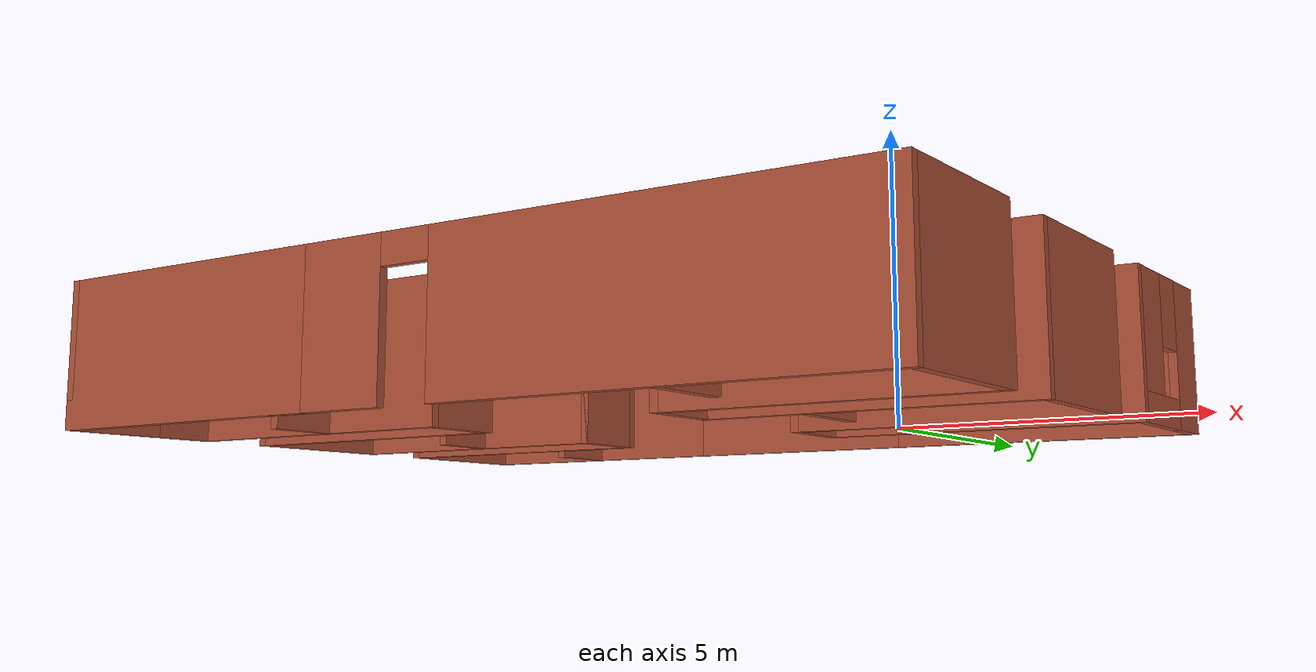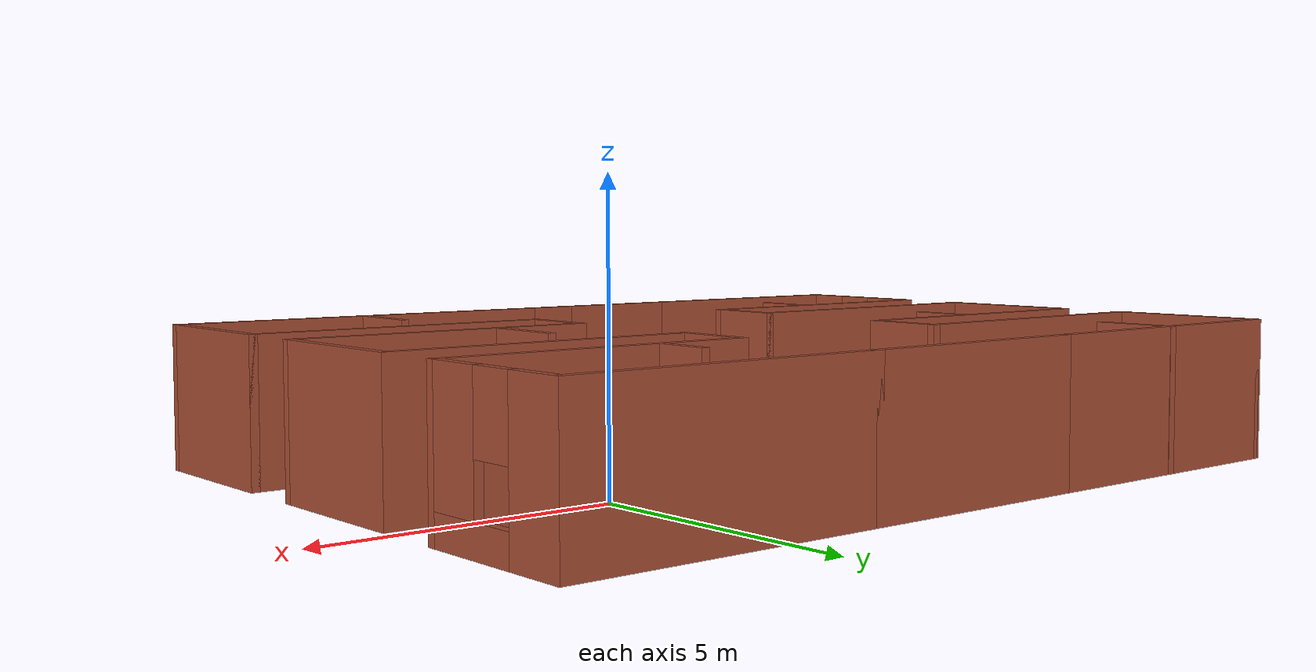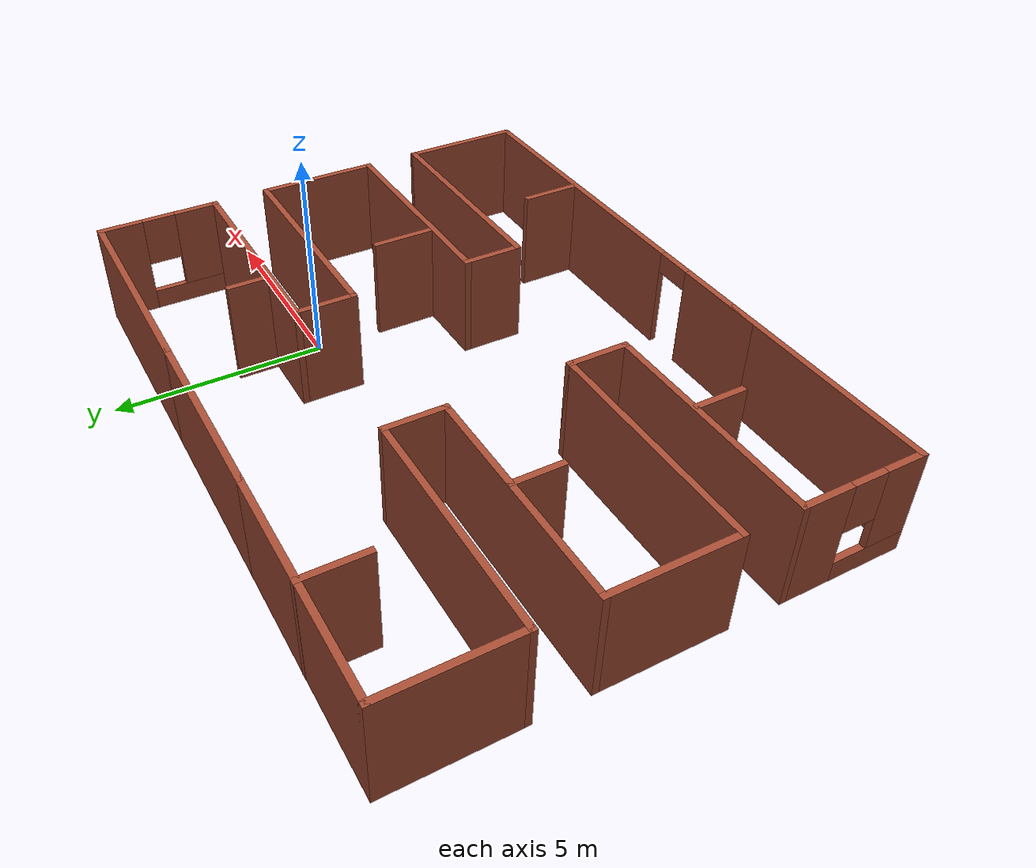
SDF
<?xml version='1.0'?>
<sdf version='1.7'>
  <model name='map'>
    <pose>-3.90417 -1.71275 0 0 -0 0</pose>
    <link name='Wall_0'>
      <collision name='Wall_0_Collision'>
        <geometry>
          <box>
            <size>3 0.15 2.5</size>
          </box>
        </geometry>
        <pose>0 0 1.25 0 -0 0</pose>
      </collision>
      <visual name='Wall_0_Visual'>
        <pose>0 0 1.25 0 -0 0</pose>
        <geometry>
          <box>
            <size>3 0.15 2.5</size>
          </box>
        </geometry>
        <material>
          <script>
            <uri>file://media/materials/scripts/gazebo.material</uri>
            <name>Gazebo/Bricks</name>
          </script>
          <ambient>1 1 1 1</ambient>
        </material>
        <meta>
          <layer>0</layer>
        </meta>
      </visual>
      <pose>-7.525 -0.003164 0 0 -0 -1.5708</pose>
    </link>
    <link name='Wall_1'>
      <collision name='Wall_1_Collision'>
        <geometry>
          <box>
            <size>5.5 0.15 2.5</size>
          </box>
        </geometry>
        <pose>0 0 1.25 0 -0 0</pose>
      </collision>
      <visual name='Wall_1_Visual'>
        <pose>0 0 1.25 0 -0 0</pose>
        <geometry>
          <box>
            <size>5.5 0.15 2.5</size>
          </box>
        </geometry>
        <material>
          <script>
            <uri>file://media/materials/scripts/gazebo.material</uri>
            <name>Gazebo/Bricks</name>
          </script>
          <ambient>1 1 1 1</ambient>
        </material>
        <meta>
          <layer>0</layer>
        </meta>
      </visual>
      <pose>-4.85 -1.42816 0 0 -0 0</pose>
    </link>
    <link name='Wall_10'>
      <collision name='Wall_10_Collision'>
        <geometry>
          <box>
            <size>5.5 0.15 2.5</size>
          </box>
        </geometry>
        <pose>0 0 1.25 0 -0 0</pose>
      </collision>
      <visual name='Wall_10_Visual'>
        <pose>0 0 1.25 0 -0 0</pose>
        <geometry>
          <box>
            <size>5.5 0.15 2.5</size>
          </box>
        </geometry>
        <material>
          <script>
            <uri>file://media/materials/scripts/gazebo.material</uri>
            <name>Gazebo/Bricks</name>
          </script>
          <ambient>1 1 1 1</ambient>
        </material>
        <meta>
          <layer>0</layer>
        </meta>
      </visual>
      <pose>-4.85 1.42184 0 0 -0 0</pose>
    </link>
    <link name='Wall_11'>
      <collision name='Wall_11_Collision'>
        <geometry>
          <box>
            <size>1.5 0.15 2.5</size>
          </box>
        </geometry>
        <pose>0 0 1.25 0 -0 0</pose>
      </collision>
      <visual name='Wall_11_Visual'>
        <pose>0 0 1.25 0 -0 0</pose>
        <geometry>
          <box>
            <size>1.5 0.15 2.5</size>
          </box>
        </geometry>
        <material>
          <script>
            <uri>file://media/materials/scripts/gazebo.material</uri>
            <name>Gazebo/Bricks</name>
          </script>
          <ambient>1 1 1 1</ambient>
        </material>
        <meta>
          <layer>0</layer>
        </meta>
      </visual>
      <pose>-2.175 2.09684 0 0 -0 1.5708</pose>
    </link>
    <link name='Wall_12'>
      <collision name='Wall_12_Collision'>
        <geometry>
          <box>
            <size>5.5 0.15 2.5</size>
          </box>
        </geometry>
        <pose>0 0 1.25 0 -0 0</pose>
      </collision>
      <visual name='Wall_12_Visual'>
        <pose>0 0 1.25 0 -0 0</pose>
        <geometry>
          <box>
            <size>5.5 0.15 2.5</size>
          </box>
        </geometry>
        <material>
          <script>
            <uri>file://media/materials/scripts/gazebo.material</uri>
            <name>Gazebo/Bricks</name>
          </script>
          <ambient>1 1 1 1</ambient>
        </material>
        <meta>
          <layer>0</layer>
        </meta>
      </visual>
      <pose>-4.85 2.77184 0 0 -0 3.14159</pose>
    </link>
    <link name='Wall_13'>
      <collision name='Wall_13_Collision'>
        <geometry>
          <box>
            <size>3 0.15 2.5</size>
          </box>
        </geometry>
        <pose>0 0 1.25 0 -0 0</pose>
      </collision>
      <visual name='Wall_13_Visual'>
        <pose>0 0 1.25 0 -0 0</pose>
        <geometry>
          <box>
            <size>3 0.15 2.5</size>
          </box>
        </geometry>
        <material>
          <script>
            <uri>file://media/materials/scripts/gazebo.material</uri>
            <name>Gazebo/Bricks</name>
          </script>
          <ambient>1 1 1 1</ambient>
        </material>
        <meta>
          <layer>0</layer>
        </meta>
      </visual>
      <pose>-7.525 4.19684 0 0 -0 1.5708</pose>
    </link>
    <link name='Wall_14'>
      <collision name='Wall_14_Collision'>
        <geometry>
          <box>
            <size>5.5 0.15 2.5</size>
          </box>
        </geometry>
        <pose>0 0 1.25 0 -0 0</pose>
      </collision>
      <visual name='Wall_14_Visual'>
        <pose>0 0 1.25 0 -0 0</pose>
        <geometry>
          <box>
            <size>5.5 0.15 2.5</size>
          </box>
        </geometry>
        <material>
          <script>
            <uri>file://media/materials/scripts/gazebo.material</uri>
            <name>Gazebo/Bricks</name>
          </script>
          <ambient>1 1 1 1</ambient>
        </material>
        <meta>
          <layer>0</layer>
        </meta>
      </visual>
      <pose>-4.85 5.62184 0 0 -0 0</pose>
    </link>
    <link name='Wall_16'>
      <collision name='Wall_16_Collision'>
        <geometry>
          <box>
            <size>4.5 0.15 2.5</size>
          </box>
        </geometry>
        <pose>0 0 1.25 0 -0 0</pose>
      </collision>
      <visual name='Wall_16_Visual'>
        <pose>0 0 1.25 0 -0 0</pose>
        <geometry>
          <box>
            <size>4.5 0.15 2.5</size>
          </box>
        </geometry>
        <material>
          <script>
            <uri>file://media/materials/scripts/gazebo.material</uri>
            <name>Gazebo/Bricks</name>
          </script>
          <ambient>1 1 1 1</ambient>
        </material>
        <meta>
          <layer>0</layer>
        </meta>
      </visual>
      <pose>-0 5.62184 0 0 -0 0</pose>
    </link>
    <link name='Wall_17'>
      <collision name='Wall_17_Collision'>
        <geometry>
          <box>
            <size>5.5 0.15 2.5</size>
          </box>
        </geometry>
        <pose>0 0 1.25 0 -0 0</pose>
      </collision>
      <visual name='Wall_17_Visual'>
        <pose>0 0 1.25 0 -0 0</pose>
        <geometry>
          <box>
            <size>5.5 0.15 2.5</size>
          </box>
        </geometry>
        <material>
          <script>
            <uri>file://media/materials/scripts/gazebo.material</uri>
            <name>Gazebo/Bricks</name>
          </script>
          <ambient>1 1 1 1</ambient>
        </material>
        <meta>
          <layer>0</layer>
        </meta>
      </visual>
      <pose>4.85 5.62184 0 0 -0 0</pose>
    </link>
    <link name='Wall_18'>
      <pose>7.525 4.19684 0 0 -0 -1.5708</pose>
      <visual name='Wall_18_Visual_0'>
        <pose>-0.962088 0 1.25 0 -0 0</pose>
        <geometry>
          <box>
            <size>1.07582 0.15 2.5</size>
          </box>
        </geometry>
        <material>
          <script>
            <uri>file://media/materials/scripts/gazebo.material</uri>
            <name>Gazebo/Bricks</name>
          </script>
          <ambient>1 1 1 1</ambient>
        </material>
        <meta>
          <layer>0</layer>
        </meta>
      </visual>
      <collision name='Wall_18_Collision_0'>
        <geometry>
          <box>
            <size>1.07582 0.15 2.5</size>
          </box>
        </geometry>
        <pose>-0.962088 0 1.25 0 -0 0</pose>
      </collision>
      <visual name='Wall_18_Visual_1'>
        <pose>0.537912 0 0.25 0 -0 0</pose>
        <geometry>
          <box>
            <size>1.92418 0.15 0.5</size>
          </box>
        </geometry>
        <material>
          <script>
            <uri>file://media/materials/scripts/gazebo.material</uri>
            <name>Gazebo/Bricks</name>
          </script>
          <ambient>1 1 1 1</ambient>
        </material>
        <meta>
          <layer>0</layer>
        </meta>
      </visual>
      <collision name='Wall_18_Collision_1'>
        <geometry>
          <box>
            <size>1.92418 0.15 0.5</size>
          </box>
        </geometry>
        <pose>0.537912 0 0.25 0 -0 0</pose>
      </collision>
      <visual name='Wall_18_Visual_2'>
        <pose>0.937912 0 1.5 0 -0 0</pose>
        <geometry>
          <box>
            <size>1.12418 0.15 2</size>
          </box>
        </geometry>
        <material>
          <script>
            <uri>file://media/materials/scripts/gazebo.material</uri>
            <name>Gazebo/Bricks</name>
          </script>
          <ambient>1 1 1 1</ambient>
        </material>
        <meta>
          <layer>0</layer>
        </meta>
      </visual>
      <collision name='Wall_18_Collision_2'>
        <geometry>
          <box>
            <size>1.12418 0.15 2</size>
          </box>
        </geometry>
        <pose>0.937912 0 1.5 0 -0 0</pose>
      </collision>
      <visual name='Wall_18_Visual_3'>
        <pose>-0.024177 0 1.9 0 -0 0</pose>
        <geometry>
          <box>
            <size>0.8 0.15 1.2</size>
          </box>
        </geometry>
        <material>
          <script>
            <uri>file://media/materials/scripts/gazebo.material</uri>
            <name>Gazebo/Bricks</name>
          </script>
          <ambient>1 1 1 1</ambient>
        </material>
        <meta>
          <layer>0</layer>
        </meta>
      </visual>
      <collision name='Wall_18_Collision_3'>
        <geometry>
          <box>
            <size>0.8 0.15 1.2</size>
          </box>
        </geometry>
        <pose>-0.024177 0 1.9 0 -0 0</pose>
      </collision>
    </link>
    <link name='Wall_19'>
      <collision name='Wall_19_Collision'>
        <geometry>
          <box>
            <size>5.5 0.15 2.5</size>
          </box>
        </geometry>
        <pose>0 0 1.25 0 -0 0</pose>
      </collision>
      <visual name='Wall_19_Visual'>
        <pose>0 0 1.25 0 -0 0</pose>
        <geometry>
          <box>
            <size>5.5 0.15 2.5</size>
          </box>
        </geometry>
        <material>
          <script>
            <uri>file://media/materials/scripts/gazebo.material</uri>
            <name>Gazebo/Bricks</name>
          </script>
          <ambient>1 1 1 1</ambient>
        </material>
        <meta>
          <layer>0</layer>
        </meta>
      </visual>
      <pose>4.85 2.77184 0 0 -0 3.14159</pose>
    </link>
    <link name='Wall_2'>
      <collision name='Wall_2_Collision'>
        <geometry>
          <box>
            <size>1.5 0.15 2.5</size>
          </box>
        </geometry>
        <pose>0 0 1.25 0 -0 0</pose>
      </collision>
      <visual name='Wall_2_Visual'>
        <pose>0 0 1.25 0 -0 0</pose>
        <geometry>
          <box>
            <size>1.5 0.15 2.5</size>
          </box>
        </geometry>
        <material>
          <script>
            <uri>file://media/materials/scripts/gazebo.material</uri>
            <name>Gazebo/Bricks</name>
          </script>
          <ambient>1 1 1 1</ambient>
        </material>
        <meta>
          <layer>0</layer>
        </meta>
      </visual>
      <pose>-2.175 -2.10316 0 0 -0 -1.5708</pose>
    </link>
    <link name='Wall_20'>
      <collision name='Wall_20_Collision'>
        <geometry>
          <box>
            <size>1.5 0.15 2.5</size>
          </box>
        </geometry>
        <pose>0 0 1.25 0 -0 0</pose>
      </collision>
      <visual name='Wall_20_Visual'>
        <pose>0 0 1.25 0 -0 0</pose>
        <geometry>
          <box>
            <size>1.5 0.15 2.5</size>
          </box>
        </geometry>
        <material>
          <script>
            <uri>file://media/materials/scripts/gazebo.material</uri>
            <name>Gazebo/Bricks</name>
          </script>
          <ambient>1 1 1 1</ambient>
        </material>
        <meta>
          <layer>0</layer>
        </meta>
      </visual>
      <pose>2.175 2.09684 0 0 -0 -1.5708</pose>
    </link>
    <link name='Wall_21'>
      <collision name='Wall_21_Collision'>
        <geometry>
          <box>
            <size>5.5 0.15 2.5</size>
          </box>
        </geometry>
        <pose>0 0 1.25 0 -0 0</pose>
      </collision>
      <visual name='Wall_21_Visual'>
        <pose>0 0 1.25 0 -0 0</pose>
        <geometry>
          <box>
            <size>5.5 0.15 2.5</size>
          </box>
        </geometry>
        <material>
          <script>
            <uri>file://media/materials/scripts/gazebo.material</uri>
            <name>Gazebo/Bricks</name>
          </script>
          <ambient>1 1 1 1</ambient>
        </material>
        <meta>
          <layer>0</layer>
        </meta>
      </visual>
      <pose>4.85 1.42184 0 0 -0 0</pose>
    </link>
    <link name='Wall_22'>
      <collision name='Wall_22_Collision'>
        <geometry>
          <box>
            <size>3 0.15 2.5</size>
          </box>
        </geometry>
        <pose>0 0 1.25 0 -0 0</pose>
      </collision>
      <visual name='Wall_22_Visual'>
        <pose>0 0 1.25 0 -0 0</pose>
        <geometry>
          <box>
            <size>3 0.15 2.5</size>
          </box>
        </geometry>
        <material>
          <script>
            <uri>file://media/materials/scripts/gazebo.material</uri>
            <name>Gazebo/Bricks</name>
          </script>
          <ambient>1 1 1 1</ambient>
        </material>
        <meta>
          <layer>0</layer>
        </meta>
      </visual>
      <pose>7.525 -0.003164 0 0 -0 -1.5708</pose>
    </link>
    <link name='Wall_23'>
      <collision name='Wall_23_Collision'>
        <geometry>
          <box>
            <size>5.5 0.15 2.5</size>
          </box>
        </geometry>
        <pose>0 0 1.25 0 -0 0</pose>
      </collision>
      <visual name='Wall_23_Visual'>
        <pose>0 0 1.25 0 -0 0</pose>
        <geometry>
          <box>
            <size>5.5 0.15 2.5</size>
          </box>
        </geometry>
        <material>
          <script>
            <uri>file://media/materials/scripts/gazebo.material</uri>
            <name>Gazebo/Bricks</name>
          </script>
          <ambient>1 1 1 1</ambient>
        </material>
        <meta>
          <layer>0</layer>
        </meta>
      </visual>
      <pose>4.85 -1.42816 0 0 -0 3.14159</pose>
    </link>
    <link name='Wall_24'>
      <collision name='Wall_24_Collision'>
        <geometry>
          <box>
            <size>1.5 0.15 2.5</size>
          </box>
        </geometry>
        <pose>0 0 1.25 0 -0 0</pose>
      </collision>
      <visual name='Wall_24_Visual'>
        <pose>0 0 1.25 0 -0 0</pose>
        <geometry>
          <box>
            <size>1.5 0.15 2.5</size>
          </box>
        </geometry>
        <material>
          <script>
            <uri>file://media/materials/scripts/gazebo.material</uri>
            <name>Gazebo/Bricks</name>
          </script>
          <ambient>1 1 1 1</ambient>
        </material>
        <meta>
          <layer>0</layer>
        </meta>
      </visual>
      <pose>2.175 -2.10316 0 0 -0 -1.5708</pose>
    </link>
    <link name='Wall_25'>
      <collision name='Wall_25_Collision'>
        <geometry>
          <box>
            <size>5.5 0.15 2.5</size>
          </box>
        </geometry>
        <pose>0 0 1.25 0 -0 0</pose>
      </collision>
      <visual name='Wall_25_Visual'>
        <pose>0 0 1.25 0 -0 0</pose>
        <geometry>
          <box>
            <size>5.5 0.15 2.5</size>
          </box>
        </geometry>
        <material>
          <script>
            <uri>file://media/materials/scripts/gazebo.material</uri>
            <name>Gazebo/Bricks</name>
          </script>
          <ambient>1 1 1 1</ambient>
        </material>
        <meta>
          <layer>0</layer>
        </meta>
      </visual>
      <pose>4.85 -2.77816 0 0 -0 0</pose>
    </link>
    <link name='Wall_26'>
      <collision name='Wall_26_Collision'>
        <geometry>
          <box>
            <size>3 0.15 2.5</size>
          </box>
        </geometry>
        <pose>0 0 1.25 0 -0 0</pose>
      </collision>
      <visual name='Wall_26_Visual'>
        <pose>0 0 1.25 0 -0 0</pose>
        <geometry>
          <box>
            <size>3 0.15 2.5</size>
          </box>
        </geometry>
        <material>
          <script>
            <uri>file://media/materials/scripts/gazebo.material</uri>
            <name>Gazebo/Bricks</name>
          </script>
          <ambient>1 1 1 1</ambient>
        </material>
        <meta>
          <layer>0</layer>
        </meta>
      </visual>
      <pose>7.525 -4.20316 0 0 -0 -1.5708</pose>
    </link>
    <link name='Wall_27'>
      <pose>2.35 -5.62816 0 0 -0 3.14159</pose>
      <visual name='Wall_27_Visual_0'>
        <pose>-1.6106 0 1.25 0 -0 0</pose>
        <geometry>
          <box>
            <size>7.27881 0.15 2.5</size>
          </box>
        </geometry>
        <material>
          <script>
            <uri>file://media/materials/scripts/gazebo.material</uri>
            <name>Gazebo/Bricks</name>
          </script>
          <ambient>1 1 1 1</ambient>
        </material>
        <meta>
          <layer>0</layer>
        </meta>
      </visual>
      <collision name='Wall_27_Collision_0'>
        <geometry>
          <box>
            <size>7.27881 0.15 2.5</size>
          </box>
        </geometry>
        <pose>-1.6106 0 1.25 0 -0 0</pose>
      </collision>
      <visual name='Wall_27_Visual_1'>
        <pose>4.0894 0 1.25 0 -0 0</pose>
        <geometry>
          <box>
            <size>2.32119 0.15 2.5</size>
          </box>
        </geometry>
        <material>
          <script>
            <uri>file://media/materials/scripts/gazebo.material</uri>
            <name>Gazebo/Bricks</name>
          </script>
          <ambient>1 1 1 1</ambient>
        </material>
        <meta>
          <layer>0</layer>
        </meta>
      </visual>
      <collision name='Wall_27_Collision_1'>
        <geometry>
          <box>
            <size>2.32119 0.15 2.5</size>
          </box>
        </geometry>
        <pose>4.0894 0 1.25 0 -0 0</pose>
      </collision>
      <visual name='Wall_27_Visual_2'>
        <pose>2.4788 0 2.25 0 -0 0</pose>
        <geometry>
          <box>
            <size>0.9 0.15 0.5</size>
          </box>
        </geometry>
        <material>
          <script>
            <uri>file://media/materials/scripts/gazebo.material</uri>
            <name>Gazebo/Bricks</name>
          </script>
          <ambient>1 1 1 1</ambient>
        </material>
        <meta>
          <layer>0</layer>
        </meta>
      </visual>
      <collision name='Wall_27_Collision_2'>
        <geometry>
          <box>
            <size>0.9 0.15 0.5</size>
          </box>
        </geometry>
        <pose>2.4788 0 2.25 0 -0 0</pose>
      </collision>
    </link>
    <link name='Wall_29'>
      <collision name='Wall_29_Collision'>
        <geometry>
          <box>
            <size>1.25 0.15 2.5</size>
          </box>
        </geometry>
        <pose>0 0 1.25 0 -0 0</pose>
      </collision>
      <visual name='Wall_29_Visual'>
        <pose>0 0 1.25 0 -0 0</pose>
        <geometry>
          <box>
            <size>1.25 0.15 2.5</size>
          </box>
        </geometry>
        <material>
          <script>
            <uri>file://media/materials/scripts/gazebo.material</uri>
            <name>Gazebo/Bricks</name>
          </script>
          <ambient>1 1 1 1</ambient>
        </material>
        <meta>
          <layer>0</layer>
        </meta>
      </visual>
      <pose>-4.59498 0.856712 0 0 -0 -1.5708</pose>
    </link>
    <link name='Wall_3'>
      <collision name='Wall_3_Collision'>
        <geometry>
          <box>
            <size>5.5 0.15 2.5</size>
          </box>
        </geometry>
        <pose>0 0 1.25 0 -0 0</pose>
      </collision>
      <visual name='Wall_3_Visual'>
        <pose>0 0 1.25 0 -0 0</pose>
        <geometry>
          <box>
            <size>5.5 0.15 2.5</size>
          </box>
        </geometry>
        <material>
          <script>
            <uri>file://media/materials/scripts/gazebo.material</uri>
            <name>Gazebo/Bricks</name>
          </script>
          <ambient>1 1 1 1</ambient>
        </material>
        <meta>
          <layer>0</layer>
        </meta>
      </visual>
      <pose>-4.85 -2.77816 0 0 -0 3.14159</pose>
    </link>
    <link name='Wall_31'>
      <collision name='Wall_31_Collision'>
        <geometry>
          <box>
            <size>1.25 0.15 2.5</size>
          </box>
        </geometry>
        <pose>0 0 1.25 0 -0 0</pose>
      </collision>
      <visual name='Wall_31_Visual'>
        <pose>0 0 1.25 0 -0 0</pose>
        <geometry>
          <box>
            <size>1.25 0.15 2.5</size>
          </box>
        </geometry>
        <material>
          <script>
            <uri>file://media/materials/scripts/gazebo.material</uri>
            <name>Gazebo/Bricks</name>
          </script>
          <ambient>1 1 1 1</ambient>
        </material>
        <meta>
          <layer>0</layer>
        </meta>
      </visual>
      <pose>-4.47262 -3.39533 0 0 -0 -1.5708</pose>
    </link>
    <link name='Wall_33'>
      <collision name='Wall_33_Collision'>
        <geometry>
          <box>
            <size>1.5 0.15 2.5</size>
          </box>
        </geometry>
        <pose>0 0 1.25 0 -0 0</pose>
      </collision>
      <visual name='Wall_33_Visual'>
        <pose>0 0 1.25 0 -0 0</pose>
        <geometry>
          <box>
            <size>1.5 0.15 2.5</size>
          </box>
        </geometry>
        <material>
          <script>
            <uri>file://media/materials/scripts/gazebo.material</uri>
            <name>Gazebo/Bricks</name>
          </script>
          <ambient>1 1 1 1</ambient>
        </material>
        <meta>
          <layer>0</layer>
        </meta>
      </visual>
      <pose>-4.87029 4.95316 0 0 -0 -1.5708</pose>
    </link>
    <link name='Wall_35'>
      <collision name='Wall_35_Collision'>
        <geometry>
          <box>
            <size>1 0.15 2.5</size>
          </box>
        </geometry>
        <pose>0 0 1.25 0 -0 0</pose>
      </collision>
      <visual name='Wall_35_Visual'>
        <pose>0 0 1.25 0 -0 0</pose>
        <geometry>
          <box>
            <size>1 0.15 2.5</size>
          </box>
        </geometry>
        <material>
          <script>
            <uri>file://media/materials/scripts/gazebo.material</uri>
            <name>Gazebo/Bricks</name>
          </script>
          <ambient>1 1 1 1</ambient>
        </material>
        <meta>
          <layer>0</layer>
        </meta>
      </visual>
      <pose>3.75615 3.30004 0 0 -0 1.5708</pose>
    </link>
    <link name='Wall_37'>
      <collision name='Wall_37_Collision'>
        <geometry>
          <box>
            <size>1.5 0.15 2.5</size>
          </box>
        </geometry>
        <pose>0 0 1.25 0 -0 0</pose>
      </collision>
      <visual name='Wall_37_Visual'>
        <pose>0 0 1.25 0 -0 0</pose>
        <geometry>
          <box>
            <size>1.5 0.15 2.5</size>
          </box>
        </geometry>
        <material>
          <script>
            <uri>file://media/materials/scripts/gazebo.material</uri>
            <name>Gazebo/Bricks</name>
          </script>
          <ambient>1 1 1 1</ambient>
        </material>
        <meta>
          <layer>0</layer>
        </meta>
      </visual>
      <pose>3.84792 -0.610228 0 0 -0 1.5708</pose>
    </link>
    <link name='Wall_39'>
      <collision name='Wall_39_Collision'>
        <geometry>
          <box>
            <size>1.5 0.15 2.5</size>
          </box>
        </geometry>
        <pose>0 0 1.25 0 -0 0</pose>
      </collision>
      <visual name='Wall_39_Visual'>
        <pose>0 0 1.25 0 -0 0</pose>
        <geometry>
          <box>
            <size>1.5 0.15 2.5</size>
          </box>
        </geometry>
        <material>
          <script>
            <uri>file://media/materials/scripts/gazebo.material</uri>
            <name>Gazebo/Bricks</name>
          </script>
          <ambient>1 1 1 1</ambient>
        </material>
        <meta>
          <layer>0</layer>
        </meta>
      </visual>
      <pose>4.03147 -4.89286 0 0 -0 1.5708</pose>
    </link>
    <link name='Wall_4'>
      <pose>-7.525 -4.20316 0 0 -0 -1.5708</pose>
      <visual name='Wall_4_Visual_0'>
        <pose>-0.894752 0 1.25 0 -0 0</pose>
        <geometry>
          <box>
            <size>1.2105 0.15 2.5</size>
          </box>
        </geometry>
        <material>
          <script>
            <uri>file://media/materials/scripts/gazebo.material</uri>
            <name>Gazebo/Bricks</name>
          </script>
          <ambient>1 1 1 1</ambient>
        </material>
        <meta>
          <layer>0</layer>
        </meta>
      </visual>
      <collision name='Wall_4_Collision_0'>
        <geometry>
          <box>
            <size>1.2105 0.15 2.5</size>
          </box>
        </geometry>
        <pose>-0.894752 0 1.25 0 -0 0</pose>
      </collision>
      <visual name='Wall_4_Visual_1'>
        <pose>0.605248 0 0.25 0 -0 0</pose>
        <geometry>
          <box>
            <size>1.7895 0.15 0.5</size>
          </box>
        </geometry>
        <material>
          <script>
            <uri>file://media/materials/scripts/gazebo.material</uri>
            <name>Gazebo/Bricks</name>
          </script>
          <ambient>1 1 1 1</ambient>
        </material>
        <meta>
          <layer>0</layer>
        </meta>
      </visual>
      <collision name='Wall_4_Collision_1'>
        <geometry>
          <box>
            <size>1.7895 0.15 0.5</size>
          </box>
        </geometry>
        <pose>0.605248 0 0.25 0 -0 0</pose>
      </collision>
      <visual name='Wall_4_Visual_2'>
        <pose>1.00525 0 1.5 0 -0 0</pose>
        <geometry>
          <box>
            <size>0.989503 0.15 2</size>
          </box>
        </geometry>
        <material>
          <script>
            <uri>file://media/materials/scripts/gazebo.material</uri>
            <name>Gazebo/Bricks</name>
          </script>
          <ambient>1 1 1 1</ambient>
        </material>
        <meta>
          <layer>0</layer>
        </meta>
      </visual>
      <collision name='Wall_4_Collision_2'>
        <geometry>
          <box>
            <size>0.989503 0.15 2</size>
          </box>
        </geometry>
        <pose>1.00525 0 1.5 0 -0 0</pose>
      </collision>
      <visual name='Wall_4_Visual_3'>
        <pose>0.110497 0 1.9 0 -0 0</pose>
        <geometry>
          <box>
            <size>0.8 0.15 1.2</size>
          </box>
        </geometry>
        <material>
          <script>
            <uri>file://media/materials/scripts/gazebo.material</uri>
            <name>Gazebo/Bricks</name>
          </script>
          <ambient>1 1 1 1</ambient>
        </material>
        <meta>
          <layer>0</layer>
        </meta>
      </visual>
      <collision name='Wall_4_Collision_3'>
        <geometry>
          <box>
            <size>0.8 0.15 1.2</size>
          </box>
        </geometry>
        <pose>0.110497 0 1.9 0 -0 0</pose>
      </collision>
    </link>
    <link name='Wall_6'>
      <collision name='Wall_6_Collision'>
        <geometry>
          <box>
            <size>5.5 0.15 2.5</size>
          </box>
        </geometry>
        <pose>0 0 1.25 0 -0 0</pose>
      </collision>
      <visual name='Wall_6_Visual'>
        <pose>0 0 1.25 0 -0 0</pose>
        <geometry>
          <box>
            <size>5.5 0.15 2.5</size>
          </box>
        </geometry>
        <material>
          <script>
            <uri>file://media/materials/scripts/gazebo.material</uri>
            <name>Gazebo/Bricks</name>
          </script>
          <ambient>1 1 1 1</ambient>
        </material>
        <meta>
          <layer>0</layer>
        </meta>
      </visual>
      <pose>-4.85 -5.62816 0 0 -0 0</pose>
    </link>
    <static>1</static>
  </model>
</sdf>
